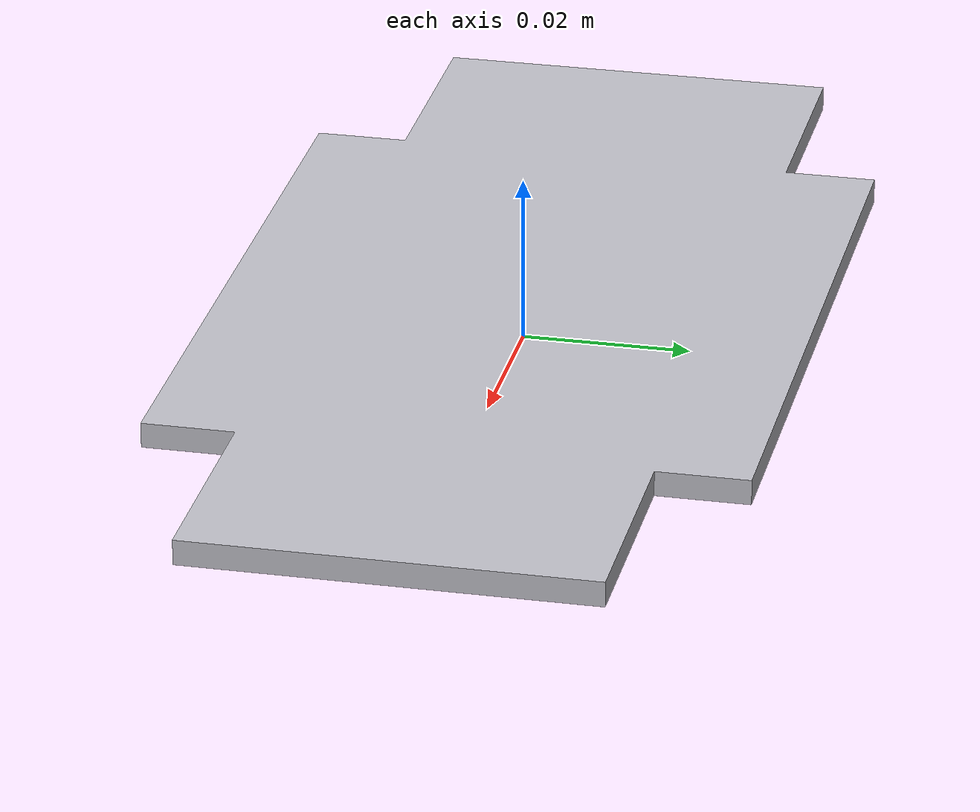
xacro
<?xml version="1.0" ?>
<robot name="assembly" xmlns:xacro="http://www.ros.org/wiki/xacro">

<xacro:include filename="$(find assembly_description)/urdf/materials.xacro" />
<xacro:include filename="$(find assembly_description)/urdf/assembly.trans" />
<xacro:include filename="$(find assembly_description)/urdf/assembly.gazebo" />
<link name="base_link">
  <inertial>
    <origin rpy="0 0 0" xyz="0.0006175728612704706 3.251485407602006e-05 0.003971112352901865"/>
    <mass value="0.20229461059655884"/>
    <inertia ixx="6.9e-05" ixy="0.0" ixz="0.0" iyy="0.000285" iyz="0.0" izz="0.000354"/>
  </inertial>
  <visual>
    <origin rpy="0 0 0" xyz="0 0 0"/>
    <geometry>
      <mesh filename="package://assembly_description/meshes/base_link.stl" scale="0.001 0.001 0.001"/>
    </geometry>
    <material name="silver"/>
  </visual>
  <collision>
    <origin rpy="0 0 0" xyz="0 0 0"/>
    <geometry>
      <mesh filename="package://assembly_description/meshes/base_link.stl" scale="0.001 0.001 0.001"/>
    </geometry>
  </collision>
</link>

</robot>

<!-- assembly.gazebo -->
<robot name="assembly" xmlns:xacro="http://www.ros.org/wiki/xacro" >

<xacro:property name="body_color" value="Gazebo/Silver" />

<gazebo>
  <plugin filename="libgazebo_ros_control.so" name="control"/>
</gazebo>
<gazebo reference="base_link">
  <material>${body_color}</material>
  <mu1>0.2</mu1>
  <mu2>0.2</mu2>
  <selfCollide>true</selfCollide>
  <gravity>true</gravity>
</gazebo>

</robot>
